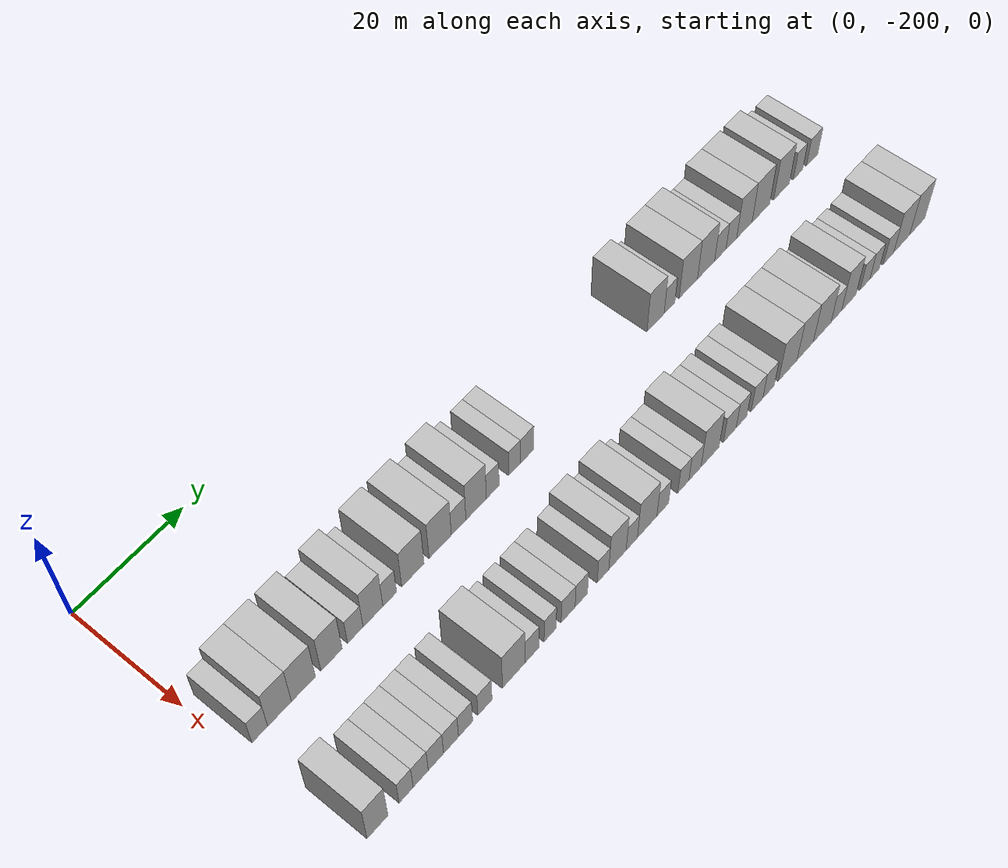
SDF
<sdf version="1.6">
 <world name="default">
  <model name="building_1">
   <static>1</static>
   <pose>25.0000 -196.6038 0 0.000000 0.000000 0.000000</pose>
   <link name="link">
    <pose>0 0 3.00 0 0 0</pose>
    <collision name="collision"><geometry><box><size>10.0000 2.7924 6.0000</size></box></geometry></collision>
    <visual name="visual">
     <cast_shadows>0</cast_shadows>
     <geometry><box><size>10.0000 2.7924 6.0000</size></box></geometry>
     <material>
      <script>
       <uri>model://HANNAS_wall/materials/scripts</uri>
       <uri>model://HANNAS_wall/materials/textures</uri>
       <name>vrc/HANNAS_wall</name>
      </script>
     </material>
    </visual>
   </link>
  </model>
  <model name="building_2">
   <static>1</static>
   <pose>25.0000 -193.0920 0 0.000000 0.000000 0.000000</pose>
   <link name="link">
    <pose>0 0 4.50 0 0 0</pose>
    <collision name="collision"><geometry><box><size>10.0000 4.2312 9.0000</size></box></geometry></collision>
    <visual name="visual">
     <cast_shadows>0</cast_shadows>
     <geometry><box><size>10.0000 4.2312 9.0000</size></box></geometry>
     <material>
      <script>
       <uri>model://HANNAS_wall/materials/scripts</uri>
       <uri>model://HANNAS_wall/materials/textures</uri>
       <name>vrc/HANNAS_wall</name>
      </script>
     </material>
    </visual>
   </link>
  </model>
  <model name="building_3">
   <static>1</static>
   <pose>25.0000 -188.8017 0 0.000000 0.000000 0.000000</pose>
   <link name="link">
    <pose>0 0 4.50 0 0 0</pose>
    <collision name="collision"><geometry><box><size>10.0000 4.3494 9.0000</size></box></geometry></collision>
    <visual name="visual">
     <cast_shadows>0</cast_shadows>
     <geometry><box><size>10.0000 4.3494 9.0000</size></box></geometry>
     <material>
      <script>
       <uri>model://HANNAS_wall/materials/scripts</uri>
       <uri>model://HANNAS_wall/materials/textures</uri>
       <name>vrc/HANNAS_wall</name>
      </script>
     </material>
    </visual>
   </link>
  </model>
  <model name="building_4">
   <static>1</static>
   <pose>25.0000 -183.6629 0 0.000000 0.000000 0.000000</pose>
   <link name="link">
    <pose>0 0 4.50 0 0 0</pose>
    <collision name="collision"><geometry><box><size>10.0000 3.9281 9.0000</size></box></geometry></collision>
    <visual name="visual">
     <cast_shadows>0</cast_shadows>
     <geometry><box><size>10.0000 3.9281 9.0000</size></box></geometry>
     <material>
      <script>
       <uri>model://HANNAS_wall/materials/scripts</uri>
       <uri>model://HANNAS_wall/materials/textures</uri>
       <name>vrc/HANNAS_wall</name>
      </script>
     </material>
    </visual>
   </link>
  </model>
  <model name="building_5">
   <static>1</static>
   <pose>25.0000 -179.2473 0 0.000000 0.000000 0.000000</pose>
   <link name="link">
    <pose>0 0 3.00 0 0 0</pose>
    <collision name="collision"><geometry><box><size>10.0000 2.9031 6.0000</size></box></geometry></collision>
    <visual name="visual">
     <cast_shadows>0</cast_shadows>
     <geometry><box><size>10.0000 2.9031 6.0000</size></box></geometry>
     <material>
      <script>
       <uri>model://HANNAS_wall/materials/scripts</uri>
       <uri>model://HANNAS_wall/materials/textures</uri>
       <name>vrc/HANNAS_wall</name>
      </script>
     </material>
    </visual>
   </link>
  </model>
  <model name="building_6">
   <static>1</static>
   <pose>25.0000 -175.9165 0 0.000000 0.000000 0.000000</pose>
   <link name="link">
    <pose>0 0 4.50 0 0 0</pose>
    <collision name="collision"><geometry><box><size>10.0000 3.7585 9.0000</size></box></geometry></collision>
    <visual name="visual">
     <cast_shadows>0</cast_shadows>
     <geometry><box><size>10.0000 3.7585 9.0000</size></box></geometry>
     <material>
      <script>
       <uri>model://HANNAS_wall/materials/scripts</uri>
       <uri>model://HANNAS_wall/materials/textures</uri>
       <name>vrc/HANNAS_wall</name>
      </script>
     </material>
    </visual>
   </link>
  </model>
  <model name="building_7">
   <static>1</static>
   <pose>25.0000 -172.7291 0 0.000000 0.000000 0.000000</pose>
   <link name="link">
    <pose>0 0 3.00 0 0 0</pose>
    <collision name="collision"><geometry><box><size>10.0000 2.6163 6.0000</size></box></geometry></collision>
    <visual name="visual">
     <cast_shadows>0</cast_shadows>
     <geometry><box><size>10.0000 2.6163 6.0000</size></box></geometry>
     <material>
      <script>
       <uri>model://HANNAS_wall/materials/scripts</uri>
       <uri>model://HANNAS_wall/materials/textures</uri>
       <name>vrc/HANNAS_wall</name>
      </script>
     </material>
    </visual>
   </link>
  </model>
  <model name="building_8">
   <static>1</static>
   <pose>25.0000 -168.2506 0 0.000000 0.000000 0.000000</pose>
   <link name="link">
    <pose>0 0 4.50 0 0 0</pose>
    <collision name="collision"><geometry><box><size>10.0000 4.3406 9.0000</size></box></geometry></collision>
    <visual name="visual">
     <cast_shadows>0</cast_shadows>
     <geometry><box><size>10.0000 4.3406 9.0000</size></box></geometry>
     <material>
      <script>
       <uri>model://HANNAS_wall/materials/scripts</uri>
       <uri>model://HANNAS_wall/materials/textures</uri>
       <name>vrc/HANNAS_wall</name>
      </script>
     </material>
    </visual>
   </link>
  </model>
  <model name="building_9">
   <static>1</static>
   <pose>25.0000 -162.8750 0 0.000000 0.000000 0.000000</pose>
   <link name="link">
    <pose>0 0 4.50 0 0 0</pose>
    <collision name="collision"><geometry><box><size>10.0000 4.4108 9.0000</size></box></geometry></collision>
    <visual name="visual">
     <cast_shadows>0</cast_shadows>
     <geometry><box><size>10.0000 4.4108 9.0000</size></box></geometry>
     <material>
      <script>
       <uri>model://HANNAS_wall/materials/scripts</uri>
       <uri>model://HANNAS_wall/materials/textures</uri>
       <name>vrc/HANNAS_wall</name>
      </script>
     </material>
    </visual>
   </link>
  </model>
  <model name="building_10">
   <static>1</static>
   <pose>25.0000 -159.2041 0 0.000000 0.000000 0.000000</pose>
   <link name="link">
    <pose>0 0 3.00 0 0 0</pose>
    <collision name="collision"><geometry><box><size>10.0000 2.9310 6.0000</size></box></geometry></collision>
    <visual name="visual">
     <cast_shadows>0</cast_shadows>
     <geometry><box><size>10.0000 2.9310 6.0000</size></box></geometry>
     <material>
      <script>
       <uri>model://HANNAS_wall/materials/scripts</uri>
       <uri>model://HANNAS_wall/materials/textures</uri>
       <name>vrc/HANNAS_wall</name>
      </script>
     </material>
    </visual>
   </link>
  </model>
  <model name="building_11">
   <static>1</static>
   <pose>25.0000 -155.6651 0 0.000000 0.000000 0.000000</pose>
   <link name="link">
    <pose>0 0 4.50 0 0 0</pose>
    <collision name="collision"><geometry><box><size>10.0000 4.1469 9.0000</size></box></geometry></collision>
    <visual name="visual">
     <cast_shadows>0</cast_shadows>
     <geometry><box><size>10.0000 4.1469 9.0000</size></box></geometry>
     <material>
      <script>
       <uri>model://HANNAS_wall/materials/scripts</uri>
       <uri>model://HANNAS_wall/materials/textures</uri>
       <name>vrc/HANNAS_wall</name>
      </script>
     </material>
    </visual>
   </link>
  </model>
  <model name="building_12">
   <static>1</static>
   <pose>25.0000 -152.2709 0 0.000000 0.000000 0.000000</pose>
   <link name="link">
    <pose>0 0 3.00 0 0 0</pose>
    <collision name="collision"><geometry><box><size>10.0000 2.6415 6.0000</size></box></geometry></collision>
    <visual name="visual">
     <cast_shadows>0</cast_shadows>
     <geometry><box><size>10.0000 2.6415 6.0000</size></box></geometry>
     <material>
      <script>
       <uri>model://HANNAS_wall/materials/scripts</uri>
       <uri>model://HANNAS_wall/materials/textures</uri>
       <name>vrc/HANNAS_wall</name>
      </script>
     </material>
    </visual>
   </link>
  </model>
  <model name="building_13">
   <static>1</static>
   <pose>25.0000 -147.7270 0 0.000000 0.000000 0.000000</pose>
   <link name="link">
    <pose>0 0 3.00 0 0 0</pose>
    <collision name="collision"><geometry><box><size>10.0000 2.4463 6.0000</size></box></geometry></collision>
    <visual name="visual">
     <cast_shadows>0</cast_shadows>
     <geometry><box><size>10.0000 2.4463 6.0000</size></box></geometry>
     <material>
      <script>
       <uri>model://HANNAS_wall/materials/scripts</uri>
       <uri>model://HANNAS_wall/materials/textures</uri>
       <name>vrc/HANNAS_wall</name>
      </script>
     </material>
    </visual>
   </link>
  </model>
  <model name="building_14">
   <static>1</static>
   <pose>25.0000 -145.0984 0 0.000000 0.000000 0.000000</pose>
   <link name="link">
    <pose>0 0 3.00 0 0 0</pose>
    <collision name="collision"><geometry><box><size>10.0000 2.8109 6.0000</size></box></geometry></collision>
    <visual name="visual">
     <cast_shadows>0</cast_shadows>
     <geometry><box><size>10.0000 2.8109 6.0000</size></box></geometry>
     <material>
      <script>
       <uri>model://HANNAS_wall/materials/scripts</uri>
       <uri>model://HANNAS_wall/materials/textures</uri>
       <name>vrc/HANNAS_wall</name>
      </script>
     </material>
    </visual>
   </link>
  </model>
  <model name="building_15">
   <static>1</static>
   <pose>25.0000 -116.7567 0 0.000000 0.000000 0.000000</pose>
   <link name="link">
    <pose>0 0 4.50 0 0 0</pose>
    <collision name="collision"><geometry><box><size>10.0000 3.9575 9.0000</size></box></geometry></collision>
    <visual name="visual">
     <cast_shadows>0</cast_shadows>
     <geometry><box><size>10.0000 3.9575 9.0000</size></box></geometry>
     <material>
      <script>
       <uri>model://HANNAS_wall/materials/scripts</uri>
       <uri>model://HANNAS_wall/materials/textures</uri>
       <name>vrc/HANNAS_wall</name>
      </script>
     </material>
    </visual>
   </link>
  </model>
  <model name="building_16">
   <static>1</static>
   <pose>25.0000 -113.5203 0 0.000000 0.000000 0.000000</pose>
   <link name="link">
    <pose>0 0 3.00 0 0 0</pose>
    <collision name="collision"><geometry><box><size>10.0000 2.5154 6.0000</size></box></geometry></collision>
    <visual name="visual">
     <cast_shadows>0</cast_shadows>
     <geometry><box><size>10.0000 2.5154 6.0000</size></box></geometry>
     <material>
      <script>
       <uri>model://HANNAS_wall/materials/scripts</uri>
       <uri>model://HANNAS_wall/materials/textures</uri>
       <name>vrc/HANNAS_wall</name>
      </script>
     </material>
    </visual>
   </link>
  </model>
  <model name="building_17">
   <static>1</static>
   <pose>25.0000 -109.0836 0 0.000000 0.000000 0.000000</pose>
   <link name="link">
    <pose>0 0 4.50 0 0 0</pose>
    <collision name="collision"><geometry><box><size>10.0000 4.3579 9.0000</size></box></geometry></collision>
    <visual name="visual">
     <cast_shadows>0</cast_shadows>
     <geometry><box><size>10.0000 4.3579 9.0000</size></box></geometry>
     <material>
      <script>
       <uri>model://HANNAS_wall/materials/scripts</uri>
       <uri>model://HANNAS_wall/materials/textures</uri>
       <name>vrc/HANNAS_wall</name>
      </script>
     </material>
    </visual>
   </link>
  </model>
  <model name="building_18">
   <static>1</static>
   <pose>25.0000 -104.8493 0 0.000000 0.000000 0.000000</pose>
   <link name="link">
    <pose>0 0 4.50 0 0 0</pose>
    <collision name="collision"><geometry><box><size>10.0000 4.1108 9.0000</size></box></geometry></collision>
    <visual name="visual">
     <cast_shadows>0</cast_shadows>
     <geometry><box><size>10.0000 4.1108 9.0000</size></box></geometry>
     <material>
      <script>
       <uri>model://HANNAS_wall/materials/scripts</uri>
       <uri>model://HANNAS_wall/materials/textures</uri>
       <name>vrc/HANNAS_wall</name>
      </script>
     </material>
    </visual>
   </link>
  </model>
  <model name="building_19">
   <static>1</static>
   <pose>25.0000 -101.4165 0 0.000000 0.000000 0.000000</pose>
   <link name="link">
    <pose>0 0 3.00 0 0 0</pose>
    <collision name="collision"><geometry><box><size>10.0000 2.7549 6.0000</size></box></geometry></collision>
    <visual name="visual">
     <cast_shadows>0</cast_shadows>
     <geometry><box><size>10.0000 2.7549 6.0000</size></box></geometry>
     <material>
      <script>
       <uri>model://HANNAS_wall/materials/scripts</uri>
       <uri>model://HANNAS_wall/materials/textures</uri>
       <name>vrc/HANNAS_wall</name>
      </script>
     </material>
    </visual>
   </link>
  </model>
  <model name="building_20">
   <static>1</static>
   <pose>25.0000 -98.7303 0 0.000000 0.000000 0.000000</pose>
   <link name="link">
    <pose>0 0 3.00 0 0 0</pose>
    <collision name="collision"><geometry><box><size>10.0000 2.6175 6.0000</size></box></geometry></collision>
    <visual name="visual">
     <cast_shadows>0</cast_shadows>
     <geometry><box><size>10.0000 2.6175 6.0000</size></box></geometry>
     <material>
      <script>
       <uri>model://HANNAS_wall/materials/scripts</uri>
       <uri>model://HANNAS_wall/materials/textures</uri>
       <name>vrc/HANNAS_wall</name>
      </script>
     </material>
    </visual>
   </link>
  </model>
  <model name="building_21">
   <static>1</static>
   <pose>25.0000 -95.5214 0 0.000000 0.000000 0.000000</pose>
   <link name="link">
    <pose>0 0 4.50 0 0 0</pose>
    <collision name="collision"><geometry><box><size>10.0000 3.8002 9.0000</size></box></geometry></collision>
    <visual name="visual">
     <cast_shadows>0</cast_shadows>
     <geometry><box><size>10.0000 3.8002 9.0000</size></box></geometry>
     <material>
      <script>
       <uri>model://HANNAS_wall/materials/scripts</uri>
       <uri>model://HANNAS_wall/materials/textures</uri>
       <name>vrc/HANNAS_wall</name>
      </script>
     </material>
    </visual>
   </link>
  </model>
  <model name="building_22">
   <static>1</static>
   <pose>25.0000 -91.4064 0 0.000000 0.000000 0.000000</pose>
   <link name="link">
    <pose>0 0 4.50 0 0 0</pose>
    <collision name="collision"><geometry><box><size>10.0000 4.4298 9.0000</size></box></geometry></collision>
    <visual name="visual">
     <cast_shadows>0</cast_shadows>
     <geometry><box><size>10.0000 4.4298 9.0000</size></box></geometry>
     <material>
      <script>
       <uri>model://HANNAS_wall/materials/scripts</uri>
       <uri>model://HANNAS_wall/materials/textures</uri>
       <name>vrc/HANNAS_wall</name>
      </script>
     </material>
    </visual>
   </link>
  </model>
  <model name="building_23">
   <static>1</static>
   <pose>25.0000 -86.1940 0 0.000000 0.000000 0.000000</pose>
   <link name="link">
    <pose>0 0 4.50 0 0 0</pose>
    <collision name="collision"><geometry><box><size>10.0000 3.9950 9.0000</size></box></geometry></collision>
    <visual name="visual">
     <cast_shadows>0</cast_shadows>
     <geometry><box><size>10.0000 3.9950 9.0000</size></box></geometry>
     <material>
      <script>
       <uri>model://HANNAS_wall/materials/scripts</uri>
       <uri>model://HANNAS_wall/materials/textures</uri>
       <name>vrc/HANNAS_wall</name>
      </script>
     </material>
    </visual>
   </link>
  </model>
  <model name="building_24">
   <static>1</static>
   <pose>25.0000 -81.9947 0 0.000000 0.000000 0.000000</pose>
   <link name="link">
    <pose>0 0 3.00 0 0 0</pose>
    <collision name="collision"><geometry><box><size>10.0000 2.4037 6.0000</size></box></geometry></collision>
    <visual name="visual">
     <cast_shadows>0</cast_shadows>
     <geometry><box><size>10.0000 2.4037 6.0000</size></box></geometry>
     <material>
      <script>
       <uri>model://HANNAS_wall/materials/scripts</uri>
       <uri>model://HANNAS_wall/materials/textures</uri>
       <name>vrc/HANNAS_wall</name>
      </script>
     </material>
    </visual>
   </link>
  </model>
  <model name="building_25">
   <static>1</static>
   <pose>25.0000 -78.3166 0 0.000000 0.000000 0.000000</pose>
   <link name="link">
    <pose>0 0 3.00 0 0 0</pose>
    <collision name="collision"><geometry><box><size>10.0000 2.9525 6.0000</size></box></geometry></collision>
    <visual name="visual">
     <cast_shadows>0</cast_shadows>
     <geometry><box><size>10.0000 2.9525 6.0000</size></box></geometry>
     <material>
      <script>
       <uri>model://HANNAS_wall/materials/scripts</uri>
       <uri>model://HANNAS_wall/materials/textures</uri>
       <name>vrc/HANNAS_wall</name>
      </script>
     </material>
    </visual>
   </link>
  </model>
  <model name="building_88">
   <static>1</static>
   <pose>44.0000 -196.1386 0 0.000000 0.000000 0.000000</pose>
   <link name="link">
    <pose>0 0 4.50 0 0 0</pose>
    <collision name="collision"><geometry><box><size>10.0000 3.7229 9.0000</size></box></geometry></collision>
    <visual name="visual">
     <cast_shadows>0</cast_shadows>
     <geometry><box><size>10.0000 3.7229 9.0000</size></box></geometry>
     <material>
      <script>
       <uri>model://HANNAS_wall/materials/scripts</uri>
       <uri>model://HANNAS_wall/materials/textures</uri>
       <name>vrc/HANNAS_wall</name>
      </script>
     </material>
    </visual>
   </link>
  </model>
  <model name="building_89">
   <static>1</static>
   <pose>44.0000 -191.0056 0 0.000000 0.000000 0.000000</pose>
   <link name="link">
    <pose>0 0 3.00 0 0 0</pose>
    <collision name="collision"><geometry><box><size>10.0000 2.5429 6.0000</size></box></geometry></collision>
    <visual name="visual">
     <cast_shadows>0</cast_shadows>
     <geometry><box><size>10.0000 2.5429 6.0000</size></box></geometry>
     <material>
      <script>
       <uri>model://HANNAS_wall/materials/scripts</uri>
       <uri>model://HANNAS_wall/materials/textures</uri>
       <name>vrc/HANNAS_wall</name>
      </script>
     </material>
    </visual>
   </link>
  </model>
  <model name="building_90">
   <static>1</static>
   <pose>44.0000 -188.3514 0 0.000000 0.000000 0.000000</pose>
   <link name="link">
    <pose>0 0 3.00 0 0 0</pose>
    <collision name="collision"><geometry><box><size>10.0000 2.7656 6.0000</size></box></geometry></collision>
    <visual name="visual">
     <cast_shadows>0</cast_shadows>
     <geometry><box><size>10.0000 2.7656 6.0000</size></box></geometry>
     <material>
      <script>
       <uri>model://HANNAS_wall/materials/scripts</uri>
       <uri>model://HANNAS_wall/materials/textures</uri>
       <name>vrc/HANNAS_wall</name>
      </script>
     </material>
    </visual>
   </link>
  </model>
  <model name="building_91">
   <static>1</static>
   <pose>44.0000 -185.5450 0 0.000000 0.000000 0.000000</pose>
   <link name="link">
    <pose>0 0 3.00 0 0 0</pose>
    <collision name="collision"><geometry><box><size>10.0000 2.8471 6.0000</size></box></geometry></collision>
    <visual name="visual">
     <cast_shadows>0</cast_shadows>
     <geometry><box><size>10.0000 2.8471 6.0000</size></box></geometry>
     <material>
      <script>
       <uri>model://HANNAS_wall/materials/scripts</uri>
       <uri>model://HANNAS_wall/materials/textures</uri>
       <name>vrc/HANNAS_wall</name>
      </script>
     </material>
    </visual>
   </link>
  </model>
  <model name="building_92">
   <static>1</static>
   <pose>44.0000 -182.7298 0 0.000000 0.000000 0.000000</pose>
   <link name="link">
    <pose>0 0 3.00 0 0 0</pose>
    <collision name="collision"><geometry><box><size>10.0000 2.7833 6.0000</size></box></geometry></collision>
    <visual name="visual">
     <cast_shadows>0</cast_shadows>
     <geometry><box><size>10.0000 2.7833 6.0000</size></box></geometry>
     <material>
      <script>
       <uri>model://HANNAS_wall/materials/scripts</uri>
       <uri>model://HANNAS_wall/materials/textures</uri>
       <name>vrc/HANNAS_wall</name>
      </script>
     </material>
    </visual>
   </link>
  </model>
  <model name="building_93">
   <static>1</static>
   <pose>44.0000 -180.0049 0 0.000000 0.000000 0.000000</pose>
   <link name="link">
    <pose>0 0 3.00 0 0 0</pose>
    <collision name="collision"><geometry><box><size>10.0000 2.6665 6.0000</size></box></geometry></collision>
    <visual name="visual">
     <cast_shadows>0</cast_shadows>
     <geometry><box><size>10.0000 2.6665 6.0000</size></box></geometry>
     <material>
      <script>
       <uri>model://HANNAS_wall/materials/scripts</uri>
       <uri>model://HANNAS_wall/materials/textures</uri>
       <name>vrc/HANNAS_wall</name>
      </script>
     </material>
    </visual>
   </link>
  </model>
  <model name="building_94">
   <static>1</static>
   <pose>44.0000 -176.3206 0 0.000000 0.000000 0.000000</pose>
   <link name="link">
    <pose>0 0 3.00 0 0 0</pose>
    <collision name="collision"><geometry><box><size>10.0000 2.7021 6.0000</size></box></geometry></collision>
    <visual name="visual">
     <cast_shadows>0</cast_shadows>
     <geometry><box><size>10.0000 2.7021 6.0000</size></box></geometry>
     <material>
      <script>
       <uri>model://HANNAS_wall/materials/scripts</uri>
       <uri>model://HANNAS_wall/materials/textures</uri>
       <name>vrc/HANNAS_wall</name>
      </script>
     </material>
    </visual>
   </link>
  </model>
  <model name="building_95">
   <static>1</static>
   <pose>44.0000 -170.7812 0 0.000000 0.000000 0.000000</pose>
   <link name="link">
    <pose>0 0 4.50 0 0 0</pose>
    <collision name="collision"><geometry><box><size>10.0000 4.3767 9.0000</size></box></geometry></collision>
    <visual name="visual">
     <cast_shadows>0</cast_shadows>
     <geometry><box><size>10.0000 4.3767 9.0000</size></box></geometry>
     <material>
      <script>
       <uri>model://HANNAS_wall/materials/scripts</uri>
       <uri>model://HANNAS_wall/materials/textures</uri>
       <name>vrc/HANNAS_wall</name>
      </script>
     </material>
    </visual>
   </link>
  </model>
  <model name="building_96">
   <static>1</static>
   <pose>44.0000 -167.1882 0 0.000000 0.000000 0.000000</pose>
   <link name="link">
    <pose>0 0 3.00 0 0 0</pose>
    <collision name="collision"><geometry><box><size>10.0000 2.8095 6.0000</size></box></geometry></collision>
    <visual name="visual">
     <cast_shadows>0</cast_shadows>
     <geometry><box><size>10.0000 2.8095 6.0000</size></box></geometry>
     <material>
      <script>
       <uri>model://HANNAS_wall/materials/scripts</uri>
       <uri>model://HANNAS_wall/materials/textures</uri>
       <name>vrc/HANNAS_wall</name>
      </script>
     </material>
    </visual>
   </link>
  </model>
  <model name="building_97">
   <static>1</static>
   <pose>44.0000 -163.5733 0 0.000000 0.000000 0.000000</pose>
   <link name="link">
    <pose>0 0 3.00 0 0 0</pose>
    <collision name="collision"><geometry><box><size>10.0000 2.4204 6.0000</size></box></geometry></collision>
    <visual name="visual">
     <cast_shadows>0</cast_shadows>
     <geometry><box><size>10.0000 2.4204 6.0000</size></box></geometry>
     <material>
      <script>
       <uri>model://HANNAS_wall/materials/scripts</uri>
       <uri>model://HANNAS_wall/materials/textures</uri>
       <name>vrc/HANNAS_wall</name>
      </script>
     </material>
    </visual>
   </link>
  </model>
  <model name="building_98">
   <static>1</static>
   <pose>44.0000 -159.9438 0 0.000000 0.000000 0.000000</pose>
   <link name="link">
    <pose>0 0 3.00 0 0 0</pose>
    <collision name="collision"><geometry><box><size>10.0000 2.8386 6.0000</size></box></geometry></collision>
    <visual name="visual">
     <cast_shadows>0</cast_shadows>
     <geometry><box><size>10.0000 2.8386 6.0000</size></box></geometry>
     <material>
      <script>
       <uri>model://HANNAS_wall/materials/scripts</uri>
       <uri>model://HANNAS_wall/materials/textures</uri>
       <name>vrc/HANNAS_wall</name>
      </script>
     </material>
    </visual>
   </link>
  </model>
  <model name="building_99">
   <static>1</static>
   <pose>44.0000 -157.2572 0 0.000000 0.000000 0.000000</pose>
   <link name="link">
    <pose>0 0 3.00 0 0 0</pose>
    <collision name="collision"><geometry><box><size>10.0000 2.5347 6.0000</size></box></geometry></collision>
    <visual name="visual">
     <cast_shadows>0</cast_shadows>
     <geometry><box><size>10.0000 2.5347 6.0000</size></box></geometry>
     <material>
      <script>
       <uri>model://HANNAS_wall/materials/scripts</uri>
       <uri>model://HANNAS_wall/materials/textures</uri>
       <name>vrc/HANNAS_wall</name>
      </script>
     </material>
    </visual>
   </link>
  </model>
  <model name="building_100">
   <static>1</static>
   <pose>44.0000 -152.7801 0 0.000000 0.000000 0.000000</pose>
   <link name="link">
    <pose>0 0 3.00 0 0 0</pose>
    <collision name="collision"><geometry><box><size>10.0000 2.4194 6.0000</size></box></geometry></collision>
    <visual name="visual">
     <cast_shadows>0</cast_shadows>
     <geometry><box><size>10.0000 2.4194 6.0000</size></box></geometry>
     <material>
      <script>
       <uri>model://HANNAS_wall/materials/scripts</uri>
       <uri>model://HANNAS_wall/materials/textures</uri>
       <name>vrc/HANNAS_wall</name>
      </script>
     </material>
    </visual>
   </link>
  </model>
  <model name="building_101">
   <static>1</static>
   <pose>44.0000 -149.7493 0 0.000000 0.000000 0.000000</pose>
   <link name="link">
    <pose>0 0 4.50 0 0 0</pose>
    <collision name="collision"><geometry><box><size>10.0000 3.6421 9.0000</size></box></geometry></collision>
    <visual name="visual">
     <cast_shadows>0</cast_shadows>
     <geometry><box><size>10.0000 3.6421 9.0000</size></box></geometry>
     <material>
      <script>
       <uri>model://HANNAS_wall/materials/scripts</uri>
       <uri>model://HANNAS_wall/materials/textures</uri>
       <name>vrc/HANNAS_wall</name>
      </script>
     </material>
    </visual>
   </link>
  </model>
  <model name="building_102">
   <static>1</static>
   <pose>44.0000 -146.7272 0 0.000000 0.000000 0.000000</pose>
   <link name="link">
    <pose>0 0 3.00 0 0 0</pose>
    <collision name="collision"><geometry><box><size>10.0000 2.4022 6.0000</size></box></geometry></collision>
    <visual name="visual">
     <cast_shadows>0</cast_shadows>
     <geometry><box><size>10.0000 2.4022 6.0000</size></box></geometry>
     <material>
      <script>
       <uri>model://HANNAS_wall/materials/scripts</uri>
       <uri>model://HANNAS_wall/materials/textures</uri>
       <name>vrc/HANNAS_wall</name>
      </script>
     </material>
    </visual>
   </link>
  </model>
  <model name="building_103">
   <static>1</static>
   <pose>44.0000 -143.4379 0 0.000000 0.000000 0.000000</pose>
   <link name="link">
    <pose>0 0 4.50 0 0 0</pose>
    <collision name="collision"><geometry><box><size>10.0000 4.1764 9.0000</size></box></geometry></collision>
    <visual name="visual">
     <cast_shadows>0</cast_shadows>
     <geometry><box><size>10.0000 4.1764 9.0000</size></box></geometry>
     <material>
      <script>
       <uri>model://HANNAS_wall/materials/scripts</uri>
       <uri>model://HANNAS_wall/materials/textures</uri>
       <name>vrc/HANNAS_wall</name>
      </script>
     </material>
    </visual>
   </link>
  </model>
  <model name="building_104">
   <static>1</static>
   <pose>44.0000 -140.0681 0 0.000000 0.000000 0.000000</pose>
   <link name="link">
    <pose>0 0 3.00 0 0 0</pose>
    <collision name="collision"><geometry><box><size>10.0000 2.5632 6.0000</size></box></geometry></collision>
    <visual name="visual">
     <cast_shadows>0</cast_shadows>
     <geometry><box><size>10.0000 2.5632 6.0000</size></box></geometry>
     <material>
      <script>
       <uri>model://HANNAS_wall/materials/scripts</uri>
       <uri>model://HANNAS_wall/materials/textures</uri>
       <name>vrc/HANNAS_wall</name>
      </script>
     </material>
    </visual>
   </link>
  </model>
  <model name="building_105">
   <static>1</static>
   <pose>44.0000 -135.5689 0 0.000000 0.000000 0.000000</pose>
   <link name="link">
    <pose>0 0 3.00 0 0 0</pose>
    <collision name="collision"><geometry><box><size>10.0000 2.4352 6.0000</size></box></geometry></collision>
    <visual name="visual">
     <cast_shadows>0</cast_shadows>
     <geometry><box><size>10.0000 2.4352 6.0000</size></box></geometry>
     <material>
      <script>
       <uri>model://HANNAS_wall/materials/scripts</uri>
       <uri>model://HANNAS_wall/materials/textures</uri>
       <name>vrc/HANNAS_wall</name>
      </script>
     </material>
    </visual>
   </link>
  </model>
  <model name="building_106">
   <static>1</static>
   <pose>44.0000 -132.9937 0 0.000000 0.000000 0.000000</pose>
   <link name="link">
    <pose>0 0 3.00 0 0 0</pose>
    <collision name="collision"><geometry><box><size>10.0000 2.7152 6.0000</size></box></geometry></collision>
    <visual name="visual">
     <cast_shadows>0</cast_shadows>
     <geometry><box><size>10.0000 2.7152 6.0000</size></box></geometry>
     <material>
      <script>
       <uri>model://HANNAS_wall/materials/scripts</uri>
       <uri>model://HANNAS_wall/materials/textures</uri>
       <name>vrc/HANNAS_wall</name>
      </script>
     </material>
    </visual>
   </link>
  </model>
  <model name="building_107">
   <static>1</static>
   <pose>44.0000 -129.5985 0 0.000000 0.000000 0.000000</pose>
   <link name="link">
    <pose>0 0 4.50 0 0 0</pose>
    <collision name="collision"><geometry><box><size>10.0000 4.0752 9.0000</size></box></geometry></collision>
    <visual name="visual">
     <cast_shadows>0</cast_shadows>
     <geometry><box><size>10.0000 4.0752 9.0000</size></box></geometry>
     <material>
      <script>
       <uri>model://HANNAS_wall/materials/scripts</uri>
       <uri>model://HANNAS_wall/materials/textures</uri>
       <name>vrc/HANNAS_wall</name>
      </script>
     </material>
    </visual>
   </link>
  </model>
  <model name="building_108">
   <static>1</static>
   <pose>44.0000 -125.1083 0 0.000000 0.000000 0.000000</pose>
   <link name="link">
    <pose>0 0 3.00 0 0 0</pose>
    <collision name="collision"><geometry><box><size>10.0000 2.9052 6.0000</size></box></geometry></collision>
    <visual name="visual">
     <cast_shadows>0</cast_shadows>
     <geometry><box><size>10.0000 2.9052 6.0000</size></box></geometry>
     <material>
      <script>
       <uri>model://HANNAS_wall/materials/scripts</uri>
       <uri>model://HANNAS_wall/materials/textures</uri>
       <name>vrc/HANNAS_wall</name>
      </script>
     </material>
    </visual>
   </link>
  </model>
  <model name="building_109">
   <static>1</static>
   <pose>44.0000 -122.4227 0 0.000000 0.000000 0.000000</pose>
   <link name="link">
    <pose>0 0 3.00 0 0 0</pose>
    <collision name="collision"><geometry><box><size>10.0000 2.4660 6.0000</size></box></geometry></collision>
    <visual name="visual">
     <cast_shadows>0</cast_shadows>
     <geometry><box><size>10.0000 2.4660 6.0000</size></box></geometry>
     <material>
      <script>
       <uri>model://HANNAS_wall/materials/scripts</uri>
       <uri>model://HANNAS_wall/materials/textures</uri>
       <name>vrc/HANNAS_wall</name>
      </script>
     </material>
    </visual>
   </link>
  </model>
  <model name="building_110">
   <static>1</static>
   <pose>44.0000 -118.8265 0 0.000000 0.000000 0.000000</pose>
   <link name="link">
    <pose>0 0 3.00 0 0 0</pose>
    <collision name="collision"><geometry><box><size>10.0000 2.7265 6.0000</size></box></geometry></collision>
    <visual name="visual">
     <cast_shadows>0</cast_shadows>
     <geometry><box><size>10.0000 2.7265 6.0000</size></box></geometry>
     <material>
      <script>
       <uri>model://HANNAS_wall/materials/scripts</uri>
       <uri>model://HANNAS_wall/materials/textures</uri>
       <name>vrc/HANNAS_wall</name>
      </script>
     </material>
    </visual>
   </link>
  </model>
  <model name="building_111">
   <static>1</static>
   <pose>44.0000 -116.1233 0 0.000000 0.000000 0.000000</pose>
   <link name="link">
    <pose>0 0 3.00 0 0 0</pose>
    <collision name="collision"><geometry><box><size>10.0000 2.6799 6.0000</size></box></geometry></collision>
    <visual name="visual">
     <cast_shadows>0</cast_shadows>
     <geometry><box><size>10.0000 2.6799 6.0000</size></box></geometry>
     <material>
      <script>
       <uri>model://HANNAS_wall/materials/scripts</uri>
       <uri>model://HANNAS_wall/materials/textures</uri>
       <name>vrc/HANNAS_wall</name>
      </script>
     </material>
    </visual>
   </link>
  </model>
  <model name="building_112">
   <static>1</static>
   <pose>44.0000 -111.5771 0 0.000000 0.000000 0.000000</pose>
   <link name="link">
    <pose>0 0 4.50 0 0 0</pose>
    <collision name="collision"><geometry><box><size>10.0000 4.4124 9.0000</size></box></geometry></collision>
    <visual name="visual">
     <cast_shadows>0</cast_shadows>
     <geometry><box><size>10.0000 4.4124 9.0000</size></box></geometry>
     <material>
      <script>
       <uri>model://HANNAS_wall/materials/scripts</uri>
       <uri>model://HANNAS_wall/materials/textures</uri>
       <name>vrc/HANNAS_wall</name>
      </script>
     </material>
    </visual>
   </link>
  </model>
  <model name="building_113">
   <static>1</static>
   <pose>44.0000 -107.3920 0 0.000000 0.000000 0.000000</pose>
   <link name="link">
    <pose>0 0 4.50 0 0 0</pose>
    <collision name="collision"><geometry><box><size>10.0000 3.9578 9.0000</size></box></geometry></collision>
    <visual name="visual">
     <cast_shadows>0</cast_shadows>
     <geometry><box><size>10.0000 3.9578 9.0000</size></box></geometry>
     <material>
      <script>
       <uri>model://HANNAS_wall/materials/scripts</uri>
       <uri>model://HANNAS_wall/materials/textures</uri>
       <name>vrc/HANNAS_wall</name>
      </script>
     </material>
    </visual>
   </link>
  </model>
  <model name="building_114">
   <static>1</static>
   <pose>44.0000 -103.2288 0 0.000000 0.000000 0.000000</pose>
   <link name="link">
    <pose>0 0 4.50 0 0 0</pose>
    <collision name="collision"><geometry><box><size>10.0000 4.3687 9.0000</size></box></geometry></collision>
    <visual name="visual">
     <cast_shadows>0</cast_shadows>
     <geometry><box><size>10.0000 4.3687 9.0000</size></box></geometry>
     <material>
      <script>
       <uri>model://HANNAS_wall/materials/scripts</uri>
       <uri>model://HANNAS_wall/materials/textures</uri>
       <name>vrc/HANNAS_wall</name>
      </script>
     </material>
    </visual>
   </link>
  </model>
  <model name="building_115">
   <static>1</static>
   <pose>44.0000 -99.7299 0 0.000000 0.000000 0.000000</pose>
   <link name="link">
    <pose>0 0 3.00 0 0 0</pose>
    <collision name="collision"><geometry><box><size>10.0000 2.6290 6.0000</size></box></geometry></collision>
    <visual name="visual">
     <cast_shadows>0</cast_shadows>
     <geometry><box><size>10.0000 2.6290 6.0000</size></box></geometry>
     <material>
      <script>
       <uri>model://HANNAS_wall/materials/scripts</uri>
       <uri>model://HANNAS_wall/materials/textures</uri>
       <name>vrc/HANNAS_wall</name>
      </script>
     </material>
    </visual>
   </link>
  </model>
  <model name="building_116">
   <static>1</static>
   <pose>44.0000 -96.6066 0 0.000000 0.000000 0.000000</pose>
   <link name="link">
    <pose>0 0 4.50 0 0 0</pose>
    <collision name="collision"><geometry><box><size>10.0000 3.6176 9.0000</size></box></geometry></collision>
    <visual name="visual">
     <cast_shadows>0</cast_shadows>
     <geometry><box><size>10.0000 3.6176 9.0000</size></box></geometry>
     <material>
      <script>
       <uri>model://HANNAS_wall/materials/scripts</uri>
       <uri>model://HANNAS_wall/materials/textures</uri>
       <name>vrc/HANNAS_wall</name>
      </script>
     </material>
    </visual>
   </link>
  </model>
  <model name="building_117">
   <static>1</static>
   <pose>44.0000 -92.5390 0 0.000000 0.000000 0.000000</pose>
   <link name="link">
    <pose>0 0 3.00 0 0 0</pose>
    <collision name="collision"><geometry><box><size>10.0000 2.5174 6.0000</size></box></geometry></collision>
    <visual name="visual">
     <cast_shadows>0</cast_shadows>
     <geometry><box><size>10.0000 2.5174 6.0000</size></box></geometry>
     <material>
      <script>
       <uri>model://HANNAS_wall/materials/scripts</uri>
       <uri>model://HANNAS_wall/materials/textures</uri>
       <name>vrc/HANNAS_wall</name>
      </script>
     </material>
    </visual>
   </link>
  </model>
  <model name="building_118">
   <static>1</static>
   <pose>44.0000 -90.0744 0 0.000000 0.000000 0.000000</pose>
   <link name="link">
    <pose>0 0 3.00 0 0 0</pose>
    <collision name="collision"><geometry><box><size>10.0000 2.4119 6.0000</size></box></geometry></collision>
    <visual name="visual">
     <cast_shadows>0</cast_shadows>
     <geometry><box><size>10.0000 2.4119 6.0000</size></box></geometry>
     <material>
      <script>
       <uri>model://HANNAS_wall/materials/scripts</uri>
       <uri>model://HANNAS_wall/materials/textures</uri>
       <name>vrc/HANNAS_wall</name>
      </script>
     </material>
    </visual>
   </link>
  </model>
  <model name="building_119">
   <static>1</static>
   <pose>44.0000 -86.5022 0 0.000000 0.000000 0.000000</pose>
   <link name="link">
    <pose>0 0 3.00 0 0 0</pose>
    <collision name="collision"><geometry><box><size>10.0000 2.7326 6.0000</size></box></geometry></collision>
    <visual name="visual">
     <cast_shadows>0</cast_shadows>
     <geometry><box><size>10.0000 2.7326 6.0000</size></box></geometry>
     <material>
      <script>
       <uri>model://HANNAS_wall/materials/scripts</uri>
       <uri>model://HANNAS_wall/materials/textures</uri>
       <name>vrc/HANNAS_wall</name>
      </script>
     </material>
    </visual>
   </link>
  </model>
  <model name="building_120">
   <static>1</static>
   <pose>44.0000 -83.0468 0 0.000000 0.000000 0.000000</pose>
   <link name="link">
    <pose>0 0 4.50 0 0 0</pose>
    <collision name="collision"><geometry><box><size>10.0000 4.1783 9.0000</size></box></geometry></collision>
    <visual name="visual">
     <cast_shadows>0</cast_shadows>
     <geometry><box><size>10.0000 4.1783 9.0000</size></box></geometry>
     <material>
      <script>
       <uri>model://HANNAS_wall/materials/scripts</uri>
       <uri>model://HANNAS_wall/materials/textures</uri>
       <name>vrc/HANNAS_wall</name>
      </script>
     </material>
    </visual>
   </link>
  </model>
  <model name="building_121">
   <static>1</static>
   <pose>44.0000 -78.9485 0 0.000000 0.000000 0.000000</pose>
   <link name="link">
    <pose>0 0 4.50 0 0 0</pose>
    <collision name="collision"><geometry><box><size>10.0000 4.0183 9.0000</size></box></geometry></collision>
    <visual name="visual">
     <cast_shadows>0</cast_shadows>
     <geometry><box><size>10.0000 4.0183 9.0000</size></box></geometry>
     <material>
      <script>
       <uri>model://HANNAS_wall/materials/scripts</uri>
       <uri>model://HANNAS_wall/materials/textures</uri>
       <name>vrc/HANNAS_wall</name>
      </script>
     </material>
    </visual>
   </link>
  </model>
 </world>
</sdf>
